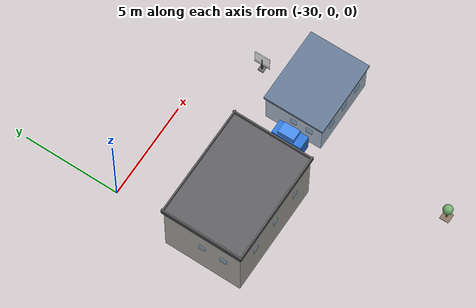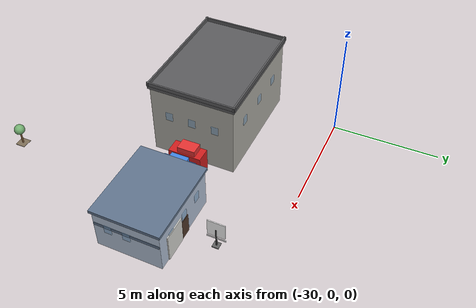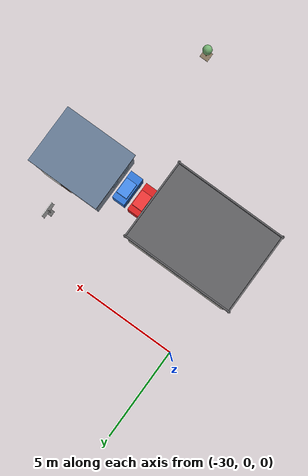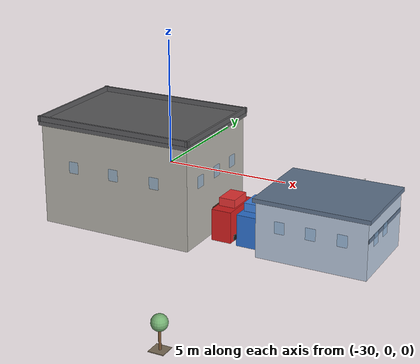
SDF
<sdf version="1.10">
 <world name="city">
  <model name="house_2">
   <static>true</static>
   <pose>-21.2 -5.02752342224121 0 0 0 0</pose>
   <link name="link">
    <collision name="body_col">
     <pose>0 0 0.96 0 0 0</pose>
     <geometry><box><size>3.8 3 1.92</size></box></geometry>
    </collision>
    <visual name="body_vis">
     <pose>0 0 0.96 0 0 0</pose>
     <geometry><box><size>3.8 3 1.92</size></box></geometry>
     <material>
      <ambient>0.720000029 0.779999971 0.860000014 1</ambient>
      <diffuse>0.720000029 0.779999971 0.860000014 1</diffuse>
      <specular>0.0799999982 0.0799999982 0.0799999982 1</specular>
     </material>
    </visual>
    <collision name="roof_col">
     <pose>0 0 1.99 0 0 0</pose>
     <geometry><box><size>3.96 3.16 0.14</size></box></geometry>
    </collision>
    <visual name="roof_vis">
     <pose>0 0 1.99 0 0 0</pose>
     <geometry><box><size>3.96 3.16 0.14</size></box></geometry>
     <material>
      <ambient>0.379999995 0.460000008 0.560000002 1</ambient>
      <diffuse>0.379999995 0.460000008 0.560000002 1</diffuse>
      <specular>0.0799999982 0.0799999982 0.0799999982 1</specular>
     </material>
    </visual>
    <visual name="door_vis">
     <pose>0 1.516 0.48 0 0 0</pose>
     <geometry><box><size>0.52 0.04 0.96</size></box></geometry>
     <material>
      <ambient>0.319999993 0.219999999 0.159999996 1</ambient>
      <diffuse>0.319999993 0.219999999 0.159999996 1</diffuse>
      <specular>0.0799999982 0.0799999982 0.0799999982 1</specular>
     </material>
    </visual>
    <visual name="win_north_0">
     <pose>-1.064 1.512 1.1904 0 0 0</pose>
     <geometry><box><size>0.34 0.032 0.4</size></box></geometry>
     <material>
      <ambient>0.550000012 0.720000029 0.879999995 0.550000012</ambient>
      <diffuse>0.550000012 0.720000029 0.879999995 0.550000012</diffuse>
      <specular>0.0799999982 0.0799999982 0.0799999982 1</specular>
      <transparency>0.35</transparency>
     </material>
    </visual>
    <visual name="win_north_1">
     <pose>0 1.512 1.1904 0 0 0</pose>
     <geometry><box><size>0.34 0.032 0.4</size></box></geometry>
     <material>
      <ambient>0.550000012 0.720000029 0.879999995 0.550000012</ambient>
      <diffuse>0.550000012 0.720000029 0.879999995 0.550000012</diffuse>
      <specular>0.0799999982 0.0799999982 0.0799999982 1</specular>
      <transparency>0.35</transparency>
     </material>
    </visual>
    <visual name="win_north_2">
     <pose>1.064 1.512 1.1904 0 0 0</pose>
     <geometry><box><size>0.34 0.032 0.4</size></box></geometry>
     <material>
      <ambient>0.550000012 0.720000029 0.879999995 0.550000012</ambient>
      <diffuse>0.550000012 0.720000029 0.879999995 0.550000012</diffuse>
      <specular>0.0799999982 0.0799999982 0.0799999982 1</specular>
      <transparency>0.35</transparency>
     </material>
    </visual>
    <visual name="win_south_0">
     <pose>-1.064 -1.512 1.1904 0 0 0</pose>
     <geometry><box><size>0.34 0.032 0.4</size></box></geometry>
     <material>
      <ambient>0.550000012 0.720000029 0.879999995 0.550000012</ambient>
      <diffuse>0.550000012 0.720000029 0.879999995 0.550000012</diffuse>
      <specular>0.0799999982 0.0799999982 0.0799999982 1</specular>
      <transparency>0.35</transparency>
     </material>
    </visual>
    <visual name="win_south_1">
     <pose>0 -1.512 1.1904 0 0 0</pose>
     <geometry><box><size>0.34 0.032 0.4</size></box></geometry>
     <material>
      <ambient>0.550000012 0.720000029 0.879999995 0.550000012</ambient>
      <diffuse>0.550000012 0.720000029 0.879999995 0.550000012</diffuse>
      <specular>0.0799999982 0.0799999982 0.0799999982 1</specular>
      <transparency>0.35</transparency>
     </material>
    </visual>
    <visual name="win_south_2">
     <pose>1.064 -1.512 1.1904 0 0 0</pose>
     <geometry><box><size>0.34 0.032 0.4</size></box></geometry>
     <material>
      <ambient>0.550000012 0.720000029 0.879999995 0.550000012</ambient>
      <diffuse>0.550000012 0.720000029 0.879999995 0.550000012</diffuse>
      <specular>0.0799999982 0.0799999982 0.0799999982 1</specular>
      <transparency>0.35</transparency>
     </material>
    </visual>
    <visual name="win_west_0">
     <pose>-1.912 -0.84 1.1904 0 0 0</pose>
     <geometry><box><size>0.032 0.34 0.4</size></box></geometry>
     <material>
      <ambient>0.550000012 0.720000029 0.879999995 0.550000012</ambient>
      <diffuse>0.550000012 0.720000029 0.879999995 0.550000012</diffuse>
      <specular>0.0799999982 0.0799999982 0.0799999982 1</specular>
      <transparency>0.35</transparency>
     </material>
    </visual>
    <visual name="win_west_1">
     <pose>-1.912 0 1.1904 0 0 0</pose>
     <geometry><box><size>0.032 0.34 0.4</size></box></geometry>
     <material>
      <ambient>0.550000012 0.720000029 0.879999995 0.550000012</ambient>
      <diffuse>0.550000012 0.720000029 0.879999995 0.550000012</diffuse>
      <specular>0.0799999982 0.0799999982 0.0799999982 1</specular>
      <transparency>0.35</transparency>
     </material>
    </visual>
    <visual name="win_east_0">
     <pose>1.912 -0.84 1.1904 0 0 0</pose>
     <geometry><box><size>0.032 0.34 0.4</size></box></geometry>
     <material>
      <ambient>0.550000012 0.720000029 0.879999995 0.550000012</ambient>
      <diffuse>0.550000012 0.720000029 0.879999995 0.550000012</diffuse>
      <specular>0.0799999982 0.0799999982 0.0799999982 1</specular>
      <transparency>0.35</transparency>
     </material>
    </visual>
    <visual name="win_east_1">
     <pose>1.912 0 1.1904 0 0 0</pose>
     <geometry><box><size>0.032 0.34 0.4</size></box></geometry>
     <material>
      <ambient>0.550000012 0.720000029 0.879999995 0.550000012</ambient>
      <diffuse>0.550000012 0.720000029 0.879999995 0.550000012</diffuse>
      <specular>0.0799999982 0.0799999982 0.0799999982 1</specular>
      <transparency>0.35</transparency>
     </material>
    </visual>
    <visual name="garage">
     <pose>0.836 1.524 0.66 0 0 0</pose>
     <geometry><box><size>1.12 0.048 1.32</size></box></geometry>
     <material>
      <ambient>0.860000014 0.860000014 0.839999974 1</ambient>
      <diffuse>0.860000014 0.860000014 0.839999974 1</diffuse>
      <specular>0.0799999982 0.0799999982 0.0799999982 1</specular>
     </material>
    </visual>
    <collision name="annex_col">
     <pose>1.24 0 0.62 0 0 0</pose>
     <geometry><box><size>1.28 2.88 1.24</size></box></geometry>
    </collision>
    <visual name="annex_vis">
     <pose>1.24 0 0.62 0 0 0</pose>
     <geometry><box><size>1.28 2.88 1.24</size></box></geometry>
     <material>
      <ambient>0.720000029 0.779999971 0.860000014 1</ambient>
      <diffuse>0.720000029 0.779999971 0.860000014 1</diffuse>
      <specular>0.0799999982 0.0799999982 0.0799999982 1</specular>
     </material>
    </visual>
    <visual name="annex_roof">
     <pose>1.24 0 1.31 0 0 0</pose>
     <geometry><box><size>1.36 2.96 0.14</size></box></geometry>
     <material>
      <ambient>0.379999995 0.460000008 0.560000002 1</ambient>
      <diffuse>0.379999995 0.460000008 0.560000002 1</diffuse>
      <specular>0.0799999982 0.0799999982 0.0799999982 1</specular>
     </material>
    </visual>
    <inertial>
     <mass>1</mass>
     <inertia><ixx>1</ixx><ixy>0</ixy><ixz>0</ixz><iyy>1</iyy><iyz>0</iyz><izz>1</izz></inertia>
    </inertial>
   </link>
  </model>
  <model name="apartment_west">
   <static>true</static>
   <pose>-28 -5.2 0 0 0 -0.00390634002767905</pose>
   <link name="link">
    <collision name="body_col">
     <pose>0 0 1.76 0 0 0</pose>
     <geometry><box><size>5.6 4 3.52</size></box></geometry>
    </collision>
    <visual name="body_vis">
     <pose>0 0 1.76 0 0 0</pose>
     <geometry><box><size>5.6 4 3.52</size></box></geometry>
     <material>
      <ambient>0.699999988 0.689999998 0.660000026 1</ambient>
      <diffuse>0.699999988 0.689999998 0.660000026 1</diffuse>
      <specular>0.0799999982 0.0799999982 0.0799999982 1</specular>
     </material>
    </visual>
    <collision name="roof_col">
     <pose>0 0 3.59 0 0 0</pose>
     <geometry><box><size>5.76 4.16 0.14</size></box></geometry>
    </collision>
    <visual name="roof_vis">
     <pose>0 0 3.59 0 0 0</pose>
     <geometry><box><size>5.76 4.16 0.14</size></box></geometry>
     <material>
      <ambient>0.360000014 0.360000014 0.370000005 1</ambient>
      <diffuse>0.360000014 0.360000014 0.370000005 1</diffuse>
      <specular>0.0799999982 0.0799999982 0.0799999982 1</specular>
     </material>
    </visual>
    <visual name="p1_vis">
     <pose>0 2.036 3.748 0 0 0</pose>
     <geometry><box><size>5.82 0.072 0.18</size></box></geometry>
     <material>
      <ambient>0.360000014 0.360000014 0.370000005 1</ambient>
      <diffuse>0.360000014 0.360000014 0.370000005 1</diffuse>
      <specular>0.0799999982 0.0799999982 0.0799999982 1</specular>
     </material>
    </visual>
    <visual name="p2_vis">
     <pose>0 -2.036 3.748 0 0 0</pose>
     <geometry><box><size>5.82 0.072 0.18</size></box></geometry>
     <material>
      <ambient>0.360000014 0.360000014 0.370000005 1</ambient>
      <diffuse>0.360000014 0.360000014 0.370000005 1</diffuse>
      <specular>0.0799999982 0.0799999982 0.0799999982 1</specular>
     </material>
    </visual>
    <visual name="p3_vis">
     <pose>2.836 0 3.748 0 0 0</pose>
     <geometry><box><size>0.072 4.22 0.18</size></box></geometry>
     <material>
      <ambient>0.360000014 0.360000014 0.370000005 1</ambient>
      <diffuse>0.360000014 0.360000014 0.370000005 1</diffuse>
      <specular>0.0799999982 0.0799999982 0.0799999982 1</specular>
     </material>
    </visual>
    <visual name="p4_vis">
     <pose>-2.836 0 3.748 0 0 0</pose>
     <geometry><box><size>0.072 4.22 0.18</size></box></geometry>
     <material>
      <ambient>0.360000014 0.360000014 0.370000005 1</ambient>
      <diffuse>0.360000014 0.360000014 0.370000005 1</diffuse>
      <specular>0.0799999982 0.0799999982 0.0799999982 1</specular>
     </material>
    </visual>
    <visual name="door_vis">
     <pose>2.816 0 0.48 0 0 0</pose>
     <geometry><box><size>0.04 0.52 0.96</size></box></geometry>
     <material>
      <ambient>0.319999993 0.219999999 0.159999996 1</ambient>
      <diffuse>0.319999993 0.219999999 0.159999996 1</diffuse>
      <specular>0.0799999982 0.0799999982 0.0799999982 1</specular>
     </material>
    </visual>
    <visual name="win_east_0">
     <pose>2.812 -1.12 2.1824 0 0 0</pose>
     <geometry><box><size>0.032 0.34 0.4</size></box></geometry>
     <material>
      <ambient>0.550000012 0.720000029 0.879999995 0.550000012</ambient>
      <diffuse>0.550000012 0.720000029 0.879999995 0.550000012</diffuse>
      <specular>0.0799999982 0.0799999982 0.0799999982 1</specular>
      <transparency>0.35</transparency>
     </material>
    </visual>
    <visual name="win_east_1">
     <pose>2.812 0 2.1824 0 0 0</pose>
     <geometry><box><size>0.032 0.34 0.4</size></box></geometry>
     <material>
      <ambient>0.550000012 0.720000029 0.879999995 0.550000012</ambient>
      <diffuse>0.550000012 0.720000029 0.879999995 0.550000012</diffuse>
      <specular>0.0799999982 0.0799999982 0.0799999982 1</specular>
      <transparency>0.35</transparency>
     </material>
    </visual>
    <visual name="win_east_2">
     <pose>2.812 1.12 2.1824 0 0 0</pose>
     <geometry><box><size>0.032 0.34 0.4</size></box></geometry>
     <material>
      <ambient>0.550000012 0.720000029 0.879999995 0.550000012</ambient>
      <diffuse>0.550000012 0.720000029 0.879999995 0.550000012</diffuse>
      <specular>0.0799999982 0.0799999982 0.0799999982 1</specular>
      <transparency>0.35</transparency>
     </material>
    </visual>
    <visual name="win_south_0">
     <pose>-1.568 -2.012 2.1824 0 0 0</pose>
     <geometry><box><size>0.34 0.032 0.4</size></box></geometry>
     <material>
      <ambient>0.550000012 0.720000029 0.879999995 0.550000012</ambient>
      <diffuse>0.550000012 0.720000029 0.879999995 0.550000012</diffuse>
      <specular>0.0799999982 0.0799999982 0.0799999982 1</specular>
      <transparency>0.35</transparency>
     </material>
    </visual>
    <visual name="win_south_1">
     <pose>0 -2.012 2.1824 0 0 0</pose>
     <geometry><box><size>0.34 0.032 0.4</size></box></geometry>
     <material>
      <ambient>0.550000012 0.720000029 0.879999995 0.550000012</ambient>
      <diffuse>0.550000012 0.720000029 0.879999995 0.550000012</diffuse>
      <specular>0.0799999982 0.0799999982 0.0799999982 1</specular>
      <transparency>0.35</transparency>
     </material>
    </visual>
    <visual name="win_south_2">
     <pose>1.568 -2.012 2.1824 0 0 0</pose>
     <geometry><box><size>0.34 0.032 0.4</size></box></geometry>
     <material>
      <ambient>0.550000012 0.720000029 0.879999995 0.550000012</ambient>
      <diffuse>0.550000012 0.720000029 0.879999995 0.550000012</diffuse>
      <specular>0.0799999982 0.0799999982 0.0799999982 1</specular>
      <transparency>0.35</transparency>
     </material>
    </visual>
    <visual name="win_west_0">
     <pose>-2.812 -1.12 2.1824 0 0 0</pose>
     <geometry><box><size>0.032 0.34 0.4</size></box></geometry>
     <material>
      <ambient>0.550000012 0.720000029 0.879999995 0.550000012</ambient>
      <diffuse>0.550000012 0.720000029 0.879999995 0.550000012</diffuse>
      <specular>0.0799999982 0.0799999982 0.0799999982 1</specular>
      <transparency>0.35</transparency>
     </material>
    </visual>
    <visual name="win_west_1">
     <pose>-2.812 0 2.1824 0 0 0</pose>
     <geometry><box><size>0.032 0.34 0.4</size></box></geometry>
     <material>
      <ambient>0.550000012 0.720000029 0.879999995 0.550000012</ambient>
      <diffuse>0.550000012 0.720000029 0.879999995 0.550000012</diffuse>
      <specular>0.0799999982 0.0799999982 0.0799999982 1</specular>
      <transparency>0.35</transparency>
     </material>
    </visual>
    <visual name="win_north_0">
     <pose>-1.568 2.012 2.1824 0 0 0</pose>
     <geometry><box><size>0.34 0.032 0.4</size></box></geometry>
     <material>
      <ambient>0.550000012 0.720000029 0.879999995 0.550000012</ambient>
      <diffuse>0.550000012 0.720000029 0.879999995 0.550000012</diffuse>
      <specular>0.0799999982 0.0799999982 0.0799999982 1</specular>
      <transparency>0.35</transparency>
     </material>
    </visual>
    <visual name="win_north_1">
     <pose>0 2.012 2.1824 0 0 0</pose>
     <geometry><box><size>0.34 0.032 0.4</size></box></geometry>
     <material>
      <ambient>0.550000012 0.720000029 0.879999995 0.550000012</ambient>
      <diffuse>0.550000012 0.720000029 0.879999995 0.550000012</diffuse>
      <specular>0.0799999982 0.0799999982 0.0799999982 1</specular>
      <transparency>0.35</transparency>
     </material>
    </visual>
    <visual name="win_north_2">
     <pose>1.568 2.012 2.1824 0 0 0</pose>
     <geometry><box><size>0.34 0.032 0.4</size></box></geometry>
     <material>
      <ambient>0.550000012 0.720000029 0.879999995 0.550000012</ambient>
      <diffuse>0.550000012 0.720000029 0.879999995 0.550000012</diffuse>
      <specular>0.0799999982 0.0799999982 0.0799999982 1</specular>
      <transparency>0.35</transparency>
     </material>
    </visual>
    <inertial>
     <mass>1</mass>
     <inertia><ixx>1</ixx><ixy>0</ixy><ixz>0</ixz><iyy>1</iyy><iyz>0</iyz><izz>1</izz></inertia>
    </inertial>
   </link>
  </model>
  <model name="tree_13">
   <static>true</static>
   <pose>-22.8013488769531 -13.0610397338867 0 0 0 0</pose>
   <link name="link">
    <collision name="soil_col">
     <pose>0 0 0.012 0 0 0</pose>
     <geometry><box><size>0.48 0.48 0.024</size></box></geometry>
    </collision>
    <visual name="soil_vis">
     <pose>0 0 0.012 0 0 0</pose>
     <geometry><box><size>0.48 0.48 0.024</size></box></geometry>
     <material>
      <ambient>0.5 0.439999998 0.349999994 1</ambient>
      <diffuse>0.5 0.439999998 0.349999994 1</diffuse>
      <specular>0.0799999982 0.0799999982 0.0799999982 1</specular>
     </material>
    </visual>
    <collision name="trunk_col">
     <pose>0 0 0.36 0 0 0</pose>
     <geometry><cylinder><radius>0.04</radius><length>0.72</length></cylinder></geometry>
    </collision>
    <visual name="trunk_vis">
     <pose>0 0 0.36 0 0 0</pose>
     <geometry><cylinder><radius>0.04</radius><length>0.72</length></cylinder></geometry>
     <material>
      <ambient>0.449999988 0.310000002 0.180000007 1</ambient>
      <diffuse>0.449999988 0.310000002 0.180000007 1</diffuse>
      <specular>0.0799999982 0.0799999982 0.0799999982 1</specular>
     </material>
    </visual>
    <visual name="crown_vis">
     <pose>0 0 0.84 0 0 0</pose>
     <geometry><sphere><radius>0.248</radius></sphere></geometry>
     <material>
      <ambient>0.449999988 0.680000007 0.439999998 1</ambient>
      <diffuse>0.449999988 0.680000007 0.439999998 1</diffuse>
      <specular>0.0799999982 0.0799999982 0.0799999982 1</specular>
     </material>
    </visual>
    <inertial>
     <mass>1</mass>
     <inertia><ixx>1</ixx><ixy>0</ixy><ixz>0</ixz><iyy>1</iyy><iyz>0</iyz><izz>1</izz></inertia>
    </inertial>
   </link>
  </model>
  <model name="house_2_qr_sign">
   <static>true</static>
   <pose>-21.2000061035156 -2.10868854522705 0 0 0 1.57080003571763</pose>
   <link name="link">
    <collision name="post_col">
     <pose>0 0 0.5 0 0 0</pose>
     <geometry><box><size>0.056 0.056 1</size></box></geometry>
    </collision>
    <visual name="post_vis">
     <pose>0 0 0.5 0 0 0</pose>
     <geometry><box><size>0.056 0.056 1</size></box></geometry>
     <material>
      <ambient>0.239999995 0.239999995 0.239999995 1</ambient>
      <diffuse>0.239999995 0.239999995 0.239999995 1</diffuse>
      <specular>0.0799999982 0.0799999982 0.0799999982 1</specular>
     </material>
    </visual>
    <collision name="base_col">
     <pose>0 0 0.024 0 0 0</pose>
     <geometry><box><size>0.3 0.3 0.048</size></box></geometry>
    </collision>
    <visual name="base_vis">
     <pose>0 0 0.024 0 0 0</pose>
     <geometry><box><size>0.3 0.3 0.048</size></box></geometry>
     <material>
      <ambient>0.379999995 0.379999995 0.379999995 1</ambient>
      <diffuse>0.379999995 0.379999995 0.379999995 1</diffuse>
      <specular>0.0799999982 0.0799999982 0.0799999982 1</specular>
     </material>
    </visual>
    <visual name="back_vis">
     <pose>0 0 0.48 0 0 0</pose>
     <geometry><box><size>0.86 0.024 0.072</size></box></geometry>
     <material>
      <ambient>0.920000017 0.920000017 0.920000017 1</ambient>
      <diffuse>0.920000017 0.920000017 0.920000017 1</diffuse>
      <specular>0.0500000007 0.0500000007 0.0500000007 1</specular>
     </material>
    </visual>
    <visual name="qr_vis">
     <pose>0 0 1.02 0 0 0</pose>
     <geometry><box><size>0.8 0.04 0.8</size></box></geometry>
     <material>
      <ambient>1 1 1 1</ambient>
      <diffuse>1 1 1 1</diffuse>
      <specular>0.0500000007 0.0500000007 0.0500000007 1</specular>
      <pbr><metal><metalness>0.0</metalness><roughness>1.0</roughness></metal></pbr>
     </material>
    </visual>
    <inertial>
     <mass>1</mass>
     <inertia><ixx>1</ixx><ixy>0</ixy><ixz>0</ixz><iyy>1</iyy><iyz>0</iyz><izz>1</izz></inertia>
    </inertial>
   </link>
  </model>
  <model name="car_8_3">
   <static>true</static>
   <pose>-24.6287868545 -5.17347789886 0 0 0 1.57080003572</pose>
   <link name="link">
    <collision name="body_col">
     <pose>0 0 0.55125 0 0 0</pose>
     <geometry><box><size>1.56 0.7 1.1025</size></box></geometry>
    </collision>
    <collision name="cab_col">
     <pose>0.06 0 0.866 0 0 0</pose>
     <geometry><box><size>0.84 0.58 1.0395</size></box></geometry>
    </collision>
    <visual name="body_vis">
     <pose>0 0 0.55125 0 0 0</pose>
     <geometry><box><size>1.56 0.7 1.1025</size></box></geometry>
     <material>
      <ambient>0.829999983 0.119999997 0.119999997 1</ambient>
      <diffuse>0.829999983 0.119999997 0.119999997 1</diffuse>
      <specular>0.0799999982 0.0799999982 0.0799999982 1</specular>
     </material>
    </visual>
    <visual name="cab_vis">
     <pose>0.06 0 0.866 0 0 0</pose>
     <geometry><box><size>0.84 0.58 1.0395</size></box></geometry>
     <material>
      <ambient>0.910000026 0.200000003 0.200000003 1</ambient>
      <diffuse>0.910000026 0.200000003 0.200000003 1</diffuse>
      <specular>0.0799999982 0.0799999982 0.0799999982 1</specular>
     </material>
    </visual>
    <visual name="glass_vis">
     <pose>0.08 0 0.854 0 0 0</pose>
     <geometry><box><size>0.76 0.528 0.8505</size></box></geometry>
     <material>
      <ambient>0.550000012 0.720000029 0.879999995 0.550000012</ambient>
      <diffuse>0.550000012 0.720000029 0.879999995 0.550000012</diffuse>
      <specular>0.0799999982 0.0799999982 0.0799999982 1</specular>
      <transparency>0.35</transparency>
     </material>
    </visual>
    <visual name="wheel_-1.15_-0.82">
     <pose>-0.46 -0.328 0.11 1.5708 0 0</pose>
     <geometry><cylinder><radius>0.112</radius><length>0.072</length></cylinder></geometry>
     <material>
      <ambient>0.0799999982 0.0799999982 0.0799999982 1</ambient>
      <diffuse>0.0799999982 0.0799999982 0.0799999982 1</diffuse>
      <specular>0.0799999982 0.0799999982 0.0799999982 1</specular>
     </material>
    </visual>
    <visual name="wheel_-1.15_0.82">
     <pose>-0.46 0.328 0.11 1.5708 0 0</pose>
     <geometry><cylinder><radius>0.112</radius><length>0.072</length></cylinder></geometry>
     <material>
      <ambient>0.0799999982 0.0799999982 0.0799999982 1</ambient>
      <diffuse>0.0799999982 0.0799999982 0.0799999982 1</diffuse>
      <specular>0.0799999982 0.0799999982 0.0799999982 1</specular>
     </material>
    </visual>
    <visual name="wheel_1.15_-0.82">
     <pose>0.46 -0.328 0.11 1.5708 0 0</pose>
     <geometry><cylinder><radius>0.112</radius><length>0.072</length></cylinder></geometry>
     <material>
      <ambient>0.0799999982 0.0799999982 0.0799999982 1</ambient>
      <diffuse>0.0799999982 0.0799999982 0.0799999982 1</diffuse>
      <specular>0.0799999982 0.0799999982 0.0799999982 1</specular>
     </material>
    </visual>
    <visual name="wheel_1.15_0.82">
     <pose>0.46 0.328 0.11 1.5708 0 0</pose>
     <geometry><cylinder><radius>0.112</radius><length>0.072</length></cylinder></geometry>
     <material>
      <ambient>0.0799999982 0.0799999982 0.0799999982 1</ambient>
      <diffuse>0.0799999982 0.0799999982 0.0799999982 1</diffuse>
      <specular>0.0799999982 0.0799999982 0.0799999982 1</specular>
     </material>
    </visual>
    <inertial>
     <mass>1</mass>
     <inertia><ixx>1</ixx><ixy>0</ixy><ixz>0</ixz><iyy>1</iyy><iyz>0</iyz><izz>1</izz></inertia>
    </inertial>
   </link>
  </model>
  <model name="car_9_2">
   <static>true</static>
   <pose>-23.6859325902 -5.22363782614 0 0 0 1.57080003572</pose>
   <link name="link">
    <collision name="body_col">
     <pose>0 0 0.55125 0 0 0</pose>
     <geometry><box><size>1.56 0.7 1.1025</size></box></geometry>
    </collision>
    <collision name="cab_col">
     <pose>0.06 0 0.866 0 0 0</pose>
     <geometry><box><size>0.84 0.58 1.0395</size></box></geometry>
    </collision>
    <visual name="body_vis">
     <pose>0 0 0.55125 0 0 0</pose>
     <geometry><box><size>1.56 0.7 1.1025</size></box></geometry>
     <material>
      <ambient>0.180000007 0.449999988 0.819999993 1</ambient>
      <diffuse>0.180000007 0.449999988 0.819999993 1</diffuse>
      <specular>0.0799999982 0.0799999982 0.0799999982 1</specular>
     </material>
    </visual>
    <visual name="cab_vis">
     <pose>0.06 0 0.866 0 0 0</pose>
     <geometry><box><size>0.84 0.58 1.0395</size></box></geometry>
     <material>
      <ambient>0.25999999 0.529999971 0.899999976 1</ambient>
      <diffuse>0.25999999 0.529999971 0.899999976 1</diffuse>
      <specular>0.0799999982 0.0799999982 0.0799999982 1</specular>
     </material>
    </visual>
    <visual name="glass_vis">
     <pose>0.08 0 0.854 0 0 0</pose>
     <geometry><box><size>0.76 0.528 0.8505</size></box></geometry>
     <material>
      <ambient>0.550000012 0.720000029 0.879999995 0.550000012</ambient>
      <diffuse>0.550000012 0.720000029 0.879999995 0.550000012</diffuse>
      <specular>0.0799999982 0.0799999982 0.0799999982 1</specular>
      <transparency>0.35</transparency>
     </material>
    </visual>
    <visual name="wheel_-1.15_-0.82">
     <pose>-0.46 -0.328 0.11 1.5708 0 0</pose>
     <geometry><cylinder><radius>0.112</radius><length>0.072</length></cylinder></geometry>
     <material>
      <ambient>0.0799999982 0.0799999982 0.0799999982 1</ambient>
      <diffuse>0.0799999982 0.0799999982 0.0799999982 1</diffuse>
      <specular>0.0799999982 0.0799999982 0.0799999982 1</specular>
     </material>
    </visual>
    <visual name="wheel_-1.15_0.82">
     <pose>-0.46 0.328 0.11 1.5708 0 0</pose>
     <geometry><cylinder><radius>0.112</radius><length>0.072</length></cylinder></geometry>
     <material>
      <ambient>0.0799999982 0.0799999982 0.0799999982 1</ambient>
      <diffuse>0.0799999982 0.0799999982 0.0799999982 1</diffuse>
      <specular>0.0799999982 0.0799999982 0.0799999982 1</specular>
     </material>
    </visual>
    <visual name="wheel_1.15_-0.82">
     <pose>0.46 -0.328 0.11 1.5708 0 0</pose>
     <geometry><cylinder><radius>0.112</radius><length>0.072</length></cylinder></geometry>
     <material>
      <ambient>0.0799999982 0.0799999982 0.0799999982 1</ambient>
      <diffuse>0.0799999982 0.0799999982 0.0799999982 1</diffuse>
      <specular>0.0799999982 0.0799999982 0.0799999982 1</specular>
     </material>
    </visual>
    <visual name="wheel_1.15_0.82">
     <pose>0.46 0.328 0.11 1.5708 0 0</pose>
     <geometry><cylinder><radius>0.112</radius><length>0.072</length></cylinder></geometry>
     <material>
      <ambient>0.0799999982 0.0799999982 0.0799999982 1</ambient>
      <diffuse>0.0799999982 0.0799999982 0.0799999982 1</diffuse>
      <specular>0.0799999982 0.0799999982 0.0799999982 1</specular>
     </material>
    </visual>
    <inertial>
     <mass>1</mass>
     <inertia><ixx>1</ixx><ixy>0</ixy><ixz>0</ixz><iyy>1</iyy><iyz>0</iyz><izz>1</izz></inertia>
    </inertial>
   </link>
  </model>
 </world>
</sdf>
